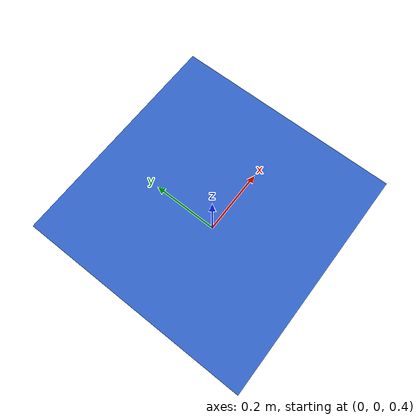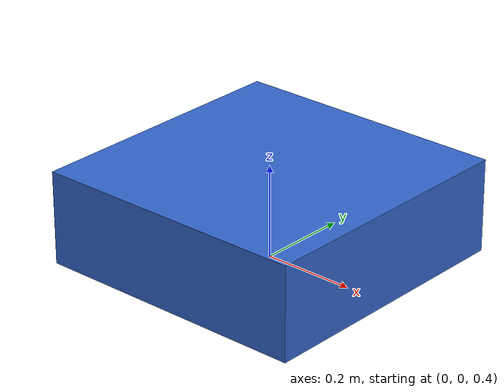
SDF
<?xml version="1.0" ?>
<sdf version="1.9">
  <model name="delivery_drone">
    <static>false</static>
    <pose>0 0 0.5 0 0 0</pose>

    <link name="base_link">
      <inertial>
        <mass>1.0</mass>
        <inertia>
          <ixx>0.02</ixx>
          <iyy>0.02</iyy>
          <izz>0.02</izz>
          <ixy>0.0</ixy>
          <ixz>0.0</ixz>
          <iyz>0.0</iyz>
        </inertia>
      </inertial>

      <collision name="box_collision">
        <geometry>
          <box>
            <size>0.6 0.6 0.2</size>
          </box>
        </geometry>
      </collision>

      <visual name="box_visual">
        <geometry>
          <box>
            <size>0.6 0.6 0.2</size>
          </box>
        </geometry>
        <material>
          <ambient>0.2 0.4 0.8 1</ambient>
          <diffuse>0.2 0.4 0.8 1</diffuse>
        </material>
      </visual>
    </link>
  </model>
</sdf>
